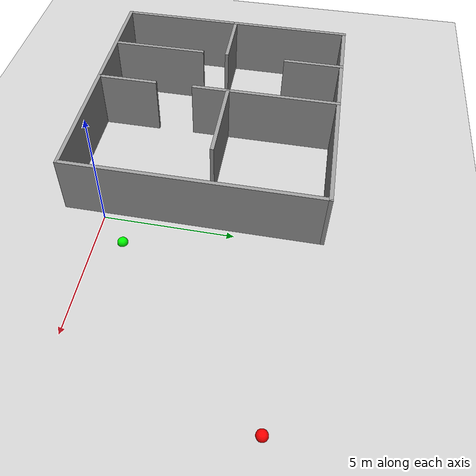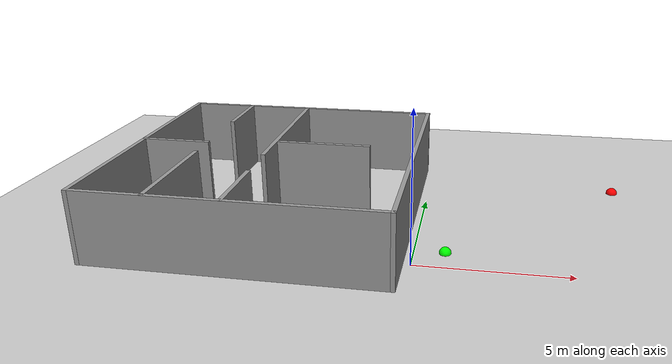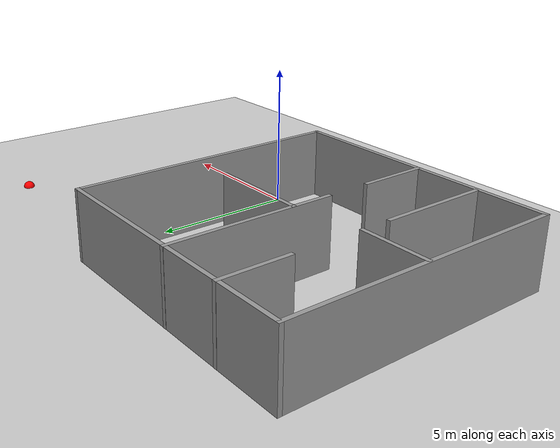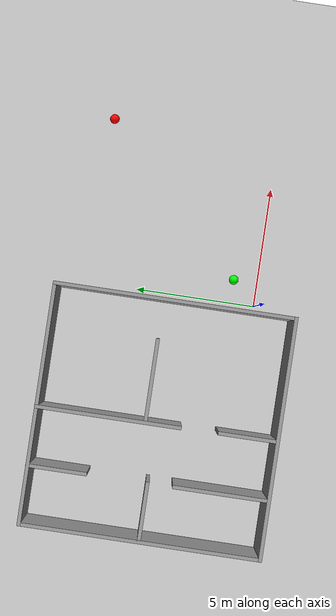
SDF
<sdf version="1.7">
 <world name="default">
  <light name="sun" type="directional">
   <pose>0 0 10 0 -0 0</pose>
   <diffuse>0.8 0.8 0.8 1</diffuse>
   <specular>0.2 0.2 0.2 1</specular>
   <attenuation>
    <range>1000</range>
    <constant>0.9</constant>
    <linear>0.01</linear>
    <quadratic>0.001</quadratic>
   </attenuation>
   <direction>-0.5 0.1 -0.9</direction>
  </light>
  <model name="ground_plane">
   <static>1</static>
   <link name="link">
    <collision name="collision">
     <geometry><plane><normal>0 0 1</normal><size>100 100</size></plane></geometry>
    </collision>
    <visual name="visual"><geometry><plane><normal>0 0 1</normal><size>100 100</size></plane></geometry></visual>
   </link>
  </model>
  <include><uri>model://room_with_walls_10x10</uri></include>
  <model name="start_marker">
   <pose>1 1 0 0 0 0</pose>
   <static>1</static>
   <link name="link">
    <visual name="visual">
     <geometry><sphere><radius>0.2</radius></sphere></geometry>
     <material><ambient>0 1 0 1</ambient></material>
    </visual>
   </link>
  </model>
  <model name="goal_marker">
   <pose>7 7 0 0 0 0</pose>
   <static>1</static>
   <link name="link">
    <visual name="visual">
     <geometry><sphere><radius>0.2</radius></sphere></geometry>
     <material><ambient>1 0 0 1</ambient></material>
    </visual>
   </link>
  </model>
 </world>
</sdf>

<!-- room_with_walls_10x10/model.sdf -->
<sdf version='1.6'>
  <model name='room_with_walls_10x10'>
    <pose frame=''>-5.11916 3.33552 0 0 -0 0</pose>
    <link name='Wall_1'>
      <collision name='Wall_1_Collision'>
        <geometry>
          <box>
            <size>10 0.15 2.5</size>
          </box>
        </geometry>
        <pose frame=''>0 0 1.25 0 -0 0</pose>
      </collision>
      <visual name='Wall_1_Visual'>
        <pose frame=''>0 0 1.25 0 -0 0</pose>
        <geometry>
          <box>
            <size>10 0.15 2.5</size>
          </box>
        </geometry>
        <material>
          <script>
            <uri>file://media/materials/scripts/gazebo.material</uri>
            <name>Gazebo/Grey</name>
          </script>
          <ambient>1 1 1 1</ambient>
        </material>
        <meta>
          <layer>0</layer>
        </meta>
      </visual>
      <pose frame=''>-0.119159 -4.92736 0 0 -0 0</pose>
    </link>
    <link name='Wall_11'>
      <collision name='Wall_11_Collision'>
        <geometry>
          <box>
            <size>2.5 0.15 2.5</size>
          </box>
        </geometry>
        <pose frame=''>0 0 1.25 0 -0 0</pose>
      </collision>
      <visual name='Wall_11_Visual'>
        <pose frame=''>0 0 1.25 0 -0 0</pose>
        <geometry>
          <box>
            <size>2.5 0.15 2.5</size>
          </box>
        </geometry>
        <material>
          <script>
            <uri>file://media/materials/scripts/gazebo.material</uri>
            <name>Gazebo/Grey</name>
          </script>
          <ambient>1 1 1 1</ambient>
        </material>
        <meta>
          <layer>0</layer>
        </meta>
      </visual>
      <pose frame=''>-2.64666 3.75236 0 0 -0 -1.5708</pose>
    </link>
    <link name='Wall_16'>
      <collision name='Wall_16_Collision'>
        <geometry>
          <box>
            <size>2.5 0.15 2.5</size>
          </box>
        </geometry>
        <pose frame=''>0 0 1.25 0 -0 0</pose>
      </collision>
      <visual name='Wall_16_Visual'>
        <pose frame=''>0 0 1.25 0 -0 0</pose>
        <geometry>
          <box>
            <size>2.5 0.15 2.5</size>
          </box>
        </geometry>
        <material>
          <script>
            <uri>file://media/materials/scripts/gazebo.material</uri>
            <name>Gazebo/Grey</name>
          </script>
          <ambient>1 1 1 1</ambient>
        </material>
        <meta>
          <layer>0</layer>
        </meta>
      </visual>
      <pose frame=''>-3.84066 0.028362 0 0 -0 0</pose>
    </link>
    <link name='Wall_18'>
      <collision name='Wall_18_Collision'>
        <geometry>
          <box>
            <size>4 0.15 2.5</size>
          </box>
        </geometry>
        <pose frame=''>0 0 1.25 0 -0 0</pose>
      </collision>
      <visual name='Wall_18_Visual'>
        <pose frame=''>0 0 1.25 0 -0 0</pose>
        <geometry>
          <box>
            <size>4 0.15 2.5</size>
          </box>
        </geometry>
        <material>
          <script>
            <uri>file://media/materials/scripts/gazebo.material</uri>
            <name>Gazebo/Grey</name>
          </script>
          <ambient>1 1 1 1</ambient>
        </material>
        <meta>
          <layer>0</layer>
        </meta>
      </visual>
      <pose frame=''>-2.63516 -2.99164 0 0 -0 1.5708</pose>
    </link>
    <link name='Wall_2'>
      <collision name='Wall_2_Collision'>
        <geometry>
          <box>
            <size>10 0.15 2.5</size>
          </box>
        </geometry>
        <pose frame=''>0 0 1.25 0 -0 0</pose>
      </collision>
      <visual name='Wall_2_Visual'>
        <pose frame=''>0 0 1.25 0 -0 0</pose>
        <geometry>
          <box>
            <size>10 0.15 2.5</size>
          </box>
        </geometry>
        <material>
          <script>
            <uri>file://media/materials/scripts/gazebo.material</uri>
            <name>Gazebo/Grey</name>
          </script>
          <ambient>1 1 1 1</ambient>
        </material>
        <meta>
          <layer>0</layer>
        </meta>
      </visual>
      <pose frame=''>4.80584 -0.002362 0 0 -0 1.5708</pose>
    </link>
    <link name='Wall_24'>
      <collision name='Wall_24_Collision'>
        <geometry>
          <box>
            <size>6 0.15 2.5</size>
          </box>
        </geometry>
        <pose frame=''>0 0 1.25 0 -0 0</pose>
      </collision>
      <visual name='Wall_24_Visual'>
        <pose frame=''>0 0 1.25 0 -0 0</pose>
        <geometry>
          <box>
            <size>6 0.15 2.5</size>
          </box>
        </geometry>
        <material>
          <script>
            <uri>file://media/materials/scripts/gazebo.material</uri>
            <name>Gazebo/Grey</name>
          </script>
          <ambient>1 1 1 1</ambient>
        </material>
        <meta>
          <layer>0</layer>
        </meta>
      </visual>
      <pose frame=''>-0.243157 2.00236 0 0 -0 -1.5708</pose>
    </link>
    <link name='Wall_28'>
      <collision name='Wall_28_Collision'>
        <geometry>
          <box>
            <size>2.5 0.15 2.5</size>
          </box>
        </geometry>
        <pose frame=''>0 0 1.25 0 -0 0</pose>
      </collision>
      <visual name='Wall_28_Visual'>
        <pose frame=''>0 0 1.25 0 -0 0</pose>
        <geometry>
          <box>
            <size>2.5 0.15 2.5</size>
          </box>
        </geometry>
        <material>
          <script>
            <uri>file://media/materials/scripts/gazebo.material</uri>
            <name>Gazebo/Grey</name>
          </script>
          <ambient>1 1 1 1</ambient>
        </material>
        <meta>
          <layer>0</layer>
        </meta>
      </visual>
      <pose frame=''>-0.220157 -3.74164 0 0 -0 1.5708</pose>
    </link>
    <link name='Wall_3'>
      <collision name='Wall_3_Collision'>
        <geometry>
          <box>
            <size>10 0.15 2.5</size>
          </box>
        </geometry>
        <pose frame=''>0 0 1.25 0 -0 0</pose>
      </collision>
      <visual name='Wall_3_Visual'>
        <pose frame=''>0 0 1.25 0 -0 0</pose>
        <geometry>
          <box>
            <size>10 0.15 2.5</size>
          </box>
        </geometry>
        <material>
          <script>
            <uri>file://media/materials/scripts/gazebo.material</uri>
            <name>Gazebo/Grey</name>
          </script>
          <ambient>1 1 1 1</ambient>
        </material>
        <meta>
          <layer>0</layer>
        </meta>
      </visual>
      <pose frame=''>-0.119159 4.92264 0 0 -0 3.14159</pose>
    </link>
    <link name='Wall_36'>
      <collision name='Wall_36_Collision'>
        <geometry>
          <box>
            <size>3.5 0.15 2.5</size>
          </box>
        </geometry>
        <pose frame=''>0 0 1.25 0 -0 0</pose>
      </collision>
      <visual name='Wall_36_Visual'>
        <pose frame=''>0 0 1.25 0 -0 0</pose>
        <geometry>
          <box>
            <size>3.5 0.15 2.5</size>
          </box>
        </geometry>
        <material>
          <script>
            <uri>file://media/materials/scripts/gazebo.material</uri>
            <name>Gazebo/Grey</name>
          </script>
          <ambient>1 1 1 1</ambient>
        </material>
        <meta>
          <layer>0</layer>
        </meta>
      </visual>
      <pose frame=''>1.44334 0.476862 0 0 -0 0</pose>
    </link>
    <link name='Wall_4'>
      <collision name='Wall_4_Collision'>
        <geometry>
          <box>
            <size>10 0.15 2.5</size>
          </box>
        </geometry>
        <pose frame=''>0 0 1.25 0 -0 0</pose>
      </collision>
      <visual name='Wall_4_Visual'>
        <pose frame=''>0 0 1.25 0 -0 0</pose>
        <geometry>
          <box>
            <size>10 0.15 2.5</size>
          </box>
        </geometry>
        <material>
          <script>
            <uri>file://media/materials/scripts/gazebo.material</uri>
            <name>Gazebo/Grey</name>
          </script>
          <ambient>1 1 1 1</ambient>
        </material>
        <meta>
          <layer>0</layer>
        </meta>
      </visual>
      <pose frame=''>-5.04416 -0.002362 0 0 -0 -1.5708</pose>
    </link>
    <static>1</static>
  </model>
</sdf>
